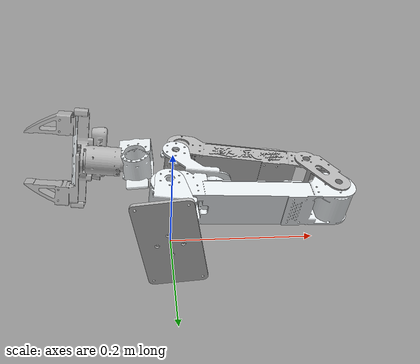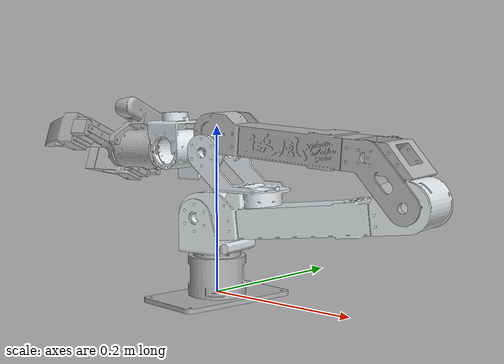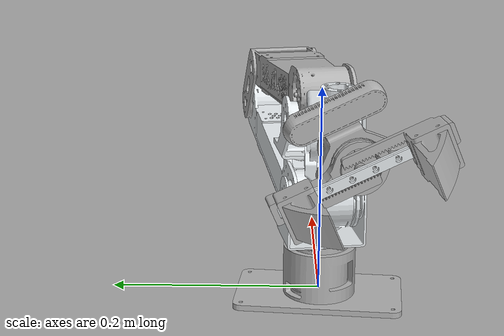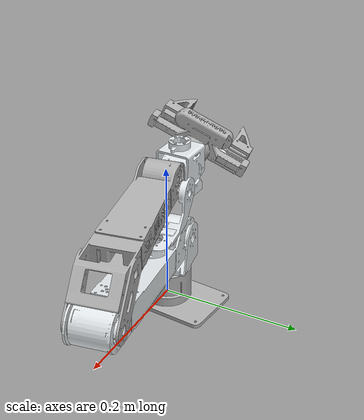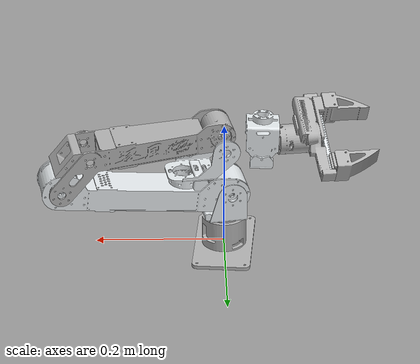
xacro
<?xml version="1.0" encoding="utf-8"?>
<robot name="sukinee_urdf" xmlns:xacro="http://www.ros.org/wiki/xacro">
  <xacro:arg name="use_mock_hardware" default="true"/>
  <xacro:arg name="hardware_plugin" default="mock_components/GenericSystem"/>
  <xacro:arg name="arm_command_interface" default="position"/>
  <xacro:arg name="gripper_command_interface" default="position"/>
  <xacro:arg name="include_gz_plugin" default="false"/>
  <xacro:arg name="controllers_file" default=""/>
  <xacro:arg name="world_z" default="0.0"/>
  <xacro:arg name="use_gazebo_gripper_controller" default="false"/>

  <xacro:include filename="$(find sukinee_urdf)/urdf/sukinee_ros2_control.xacro"/>

  <link name="world" />
  <joint name="world_to_base_link" type="fixed">
    <parent link="world" />
    <child link="base_link" />
    <origin xyz="0 0 $(arg world_z)" rpy="0 0 0" />
  </joint>
  <link name="base_link">
    <inertial>
      <origin xyz="1.5245E-07 1.2552E-07 0.013027" rpy="0 0 0" />
      <mass value="0.54275" />
      <inertia ixx="0.00058688" ixy="-2.8116E-05" ixz="1.5174E-09" iyy="0.00028904" iyz="1.2494E-09" izz="0.00073167" />
    </inertial>
    <visual>
      <origin xyz="0 0 0" rpy="0 0 0" />
      <geometry>
        <mesh filename="package://sukinee_urdf/meshes/urdf_camera_gripper/base_link.STL" />
      </geometry>
      <material name="">
        <color rgba="0.69804 0.69804 0.69804 1" />
      </material>
    </visual>
    <collision>
      <origin xyz="0 0 0" rpy="0 0 0" />
      <geometry>
        <mesh filename="package://sukinee_urdf/meshes/urdf_camera_gripper/base_link.STL" />
      </geometry>
    </collision>
  </link>
  <link name="Link1">
    <inertial>
      <origin xyz="-0.0053771 -0.0011385 0.038552" rpy="0 0 0" />
      <mass value="0.37961" />
      <inertia ixx="0.00019575" ixy="6.0614E-06" ixz="2.553E-06" iyy="0.00016059" iyz="4.2618E-07" izz="0.00019169" />
    </inertial>
    <visual>
      <origin xyz="0 0 0" rpy="0 0 0" />
      <geometry>
        <mesh filename="package://sukinee_urdf/meshes/urdf_camera_gripper/Link1.STL" />
      </geometry>
      <material name="">
        <color rgba="0.89804 0.91765 0.92941 1" />
      </material>
    </visual>
    <collision>
      <origin xyz="0 0 0" rpy="0 0 0" />
      <geometry>
        <mesh filename="package://sukinee_urdf/meshes/urdf_camera_gripper/Link1.STL" />
      </geometry>
    </collision>
  </link>
  <joint name="Joint1" type="continuous">
    <origin xyz="0 0 0.0514" rpy="0 0 0" />
    <parent link="base_link" />
    <child link="Link1" />
    <axis xyz="0 0 -1" />
    <limit effort="5" velocity="5" />
  </joint>
  <link name="Link2">
    <inertial>
      <origin xyz="0.19861 -0.019415 -0.027112" rpy="0 0 0" />
      <mass value="0.63265" />
      <inertia ixx="0.00023073" ixy="0.00021283" ixz="-2.0428E-06" iyy="0.0020677" iyz="-3.5072E-07" izz="0.0021179" />
    </inertial>
    <visual>
      <origin xyz="0 0 0" rpy="0 0 0" />
      <geometry>
        <mesh filename="package://sukinee_urdf/meshes/urdf_camera_gripper/Link2.STL" />
      </geometry>
      <material name="">
        <color rgba="0.89804 0.91765 0.92941 1" />
      </material>
    </visual>
    <collision>
      <origin xyz="0 0 0" rpy="0 0 0" />
      <geometry>
        <mesh filename="package://sukinee_urdf/meshes/urdf_camera_gripper/Link2.STL" />
      </geometry>
    </collision>
  </link>
  <joint name="Joint2" type="revolute">
    <origin xyz="-0.010939 0.025949 0.0425" rpy="-1.5708 -0.00097565 0.16603" />
    <parent link="Link1" />
    <child link="Link2" />
    <axis xyz="0 0 -1" />
    <limit lower="-0.3" upper="2.6" effort="5" velocity="5" />
  </joint>
  <link name="Link3">
    <inertial>
      <origin xyz="-0.16918 -0.04234 -0.027922" rpy="0 0 0" />
      <mass value="0.50027" />
      <inertia ixx="0.00012507" ixy="-9.8555E-06" ixz="-6.0131E-07" iyy="0.0010627" iyz="-6.7669E-07" izz="0.0011221" />
    </inertial>
    <visual>
      <origin xyz="0 0 0" rpy="0 0 0" />
      <geometry>
        <mesh filename="package://sukinee_urdf/meshes/urdf_camera_gripper/Link3.STL" />
      </geometry>
      <material name="">
        <color rgba="0.69804 0.69804 0.69804 1" />
      </material>
    </visual>
    <collision>
      <origin xyz="0 0 0" rpy="0 0 0" />
      <geometry>
        <mesh filename="package://sukinee_urdf/meshes/urdf_camera_gripper/Link3.STL" />
      </geometry>
    </collision>
  </link>
  <joint name="Joint3" type="revolute">
    <origin xyz="0.26466 -0.031009 0" rpy="0 0 0" />
    <parent link="Link2" />
    <child link="Link3" />
    <axis xyz="0 0 -1" />
    <limit lower="-2.36" upper="0.3" effort="5" velocity="5" />
  </joint>
  <link name="Link4">
    <inertial>
      <origin xyz="-0.052455 -0.054524 -0.025682" rpy="0 0 0" />
      <mass value="0.27416" />
      <inertia ixx="0.00012695" ixy="-2.6532E-05" ixz="2.2452E-07" iyy="0.00018079" iyz="1.7982E-08" izz="0.00012597" />
    </inertial>
    <visual>
      <origin xyz="0 0 0" rpy="0 0 0" />
      <geometry>
        <mesh filename="package://sukinee_urdf/meshes/urdf_camera_gripper/Link4.STL" />
      </geometry>
      <material name="">
        <color rgba="0.89804 0.91765 0.92941 1" />
      </material>
    </visual>
    <collision>
      <origin xyz="0 0 0" rpy="0 0 0" />
      <geometry>
        <mesh filename="package://sukinee_urdf/meshes/urdf_camera_gripper/Link4.STL" />
      </geometry>
    </collision>
  </link>
  <joint name="Joint4" type="revolute">
    <origin xyz="-0.25553 -0.046044 -0.0039" rpy="0 0 0" />
    <parent link="Link3" />
    <child link="Link4" />
    <axis xyz="0 0 -1" />
    <limit lower="-0.8" upper="0.8" effort="1.6" velocity="5" />
  </joint>
  <link name="Link5">
    <inertial>
      <origin xyz="-0.00069753 -0.0032664 0.040879" rpy="0 0 0" />
      <mass value="0.23438" />
      <inertia ixx="6.5833E-05" ixy="4.682E-06" ixz="2.603E-07" iyy="8.781E-05" iyz="1.4416E-06" izz="7.0008E-05" />
    </inertial>
    <visual>
      <origin xyz="0 0 0" rpy="0 0 0" />
      <geometry>
        <mesh filename="package://sukinee_urdf/meshes/urdf_camera_gripper/Link5.STL" />
      </geometry>
      <material name="">
        <color rgba="0.89804 0.91765 0.92941 1" />
      </material>
    </visual>
    <collision>
      <origin xyz="0 0 0" rpy="0 0 0" />
      <geometry>
        <mesh filename="package://sukinee_urdf/meshes/urdf_camera_gripper/Link5.STL" />
      </geometry>
    </collision>
  </link>
  <joint name="Joint5" type="revolute">
    <origin xyz="-0.063304 -0.043146 -0.0245" rpy="1.5708 1.3765 3.112" />
    <parent link="Link4" />
    <child link="Link5" />
    <axis xyz="0 0 -1" />
    <limit lower="-0.8" upper="0.8" effort="1.6" velocity="5" />
  </joint>
  <link name="Link6">
    <inertial>
      <origin xyz="0.0024889 -0.0057192 0.037515" rpy="0 0 0" />
      <mass value="0.25842" />
      <inertia ixx="6.3275E-05" ixy="-2.4218E-05" ixz="-5.9557E-07" iyy="0.00010755" iyz="-4.046E-07" izz="0.00014859" />
    </inertial>
    <visual>
      <origin xyz="0 0 0" rpy="0 0 0" />
      <geometry>
        <mesh filename="package://sukinee_urdf/meshes/urdf_camera_gripper/Link6.STL" />
      </geometry>
      <material name="">
        <color rgba="0.69804 0.69804 0.69804 1" />
      </material>
    </visual>
    <collision>
      <origin xyz="0 0 0" rpy="0 0 0" />
      <geometry>
        <mesh filename="package://sukinee_urdf/meshes/urdf_camera_gripper/Link6.STL" />
      </geometry>
    </collision>
  </link>
  <joint name="Joint6" type="revolute">
    <origin xyz="0.003658 0.019663 0.045" rpy="1.5708 0.0055167 2.9577" />
    <parent link="Link5" />
    <child link="Link6" />
    <axis xyz="0 0 -1" />
    <limit lower="-2.1" upper="2.1" effort="1.6" velocity="5" />
  </joint>
  <link name="Link8">
    <inertial>
      <origin xyz="-1.3531E-16 -8.0214E-15 0.0030448" rpy="0 0 0" />
      <mass value="0.019614" />
      <inertia ixx="6.0759E-06" ixy="-1.3306E-05" ixz="7.577E-22" iyy="3.0348E-05" iyz="2.1085E-22" izz="3.6283E-05" />
    </inertial>
    <visual>
      <origin xyz="0 0 0" rpy="0 0 0" />
      <geometry>
        <mesh filename="package://sukinee_urdf/meshes/urdf_camera_gripper/Link8.STL" />
      </geometry>
      <material name="">
        <color rgba="0.89804 0.91765 0.92941 1" />
      </material>
    </visual>
    <collision>
      <origin xyz="0 0 0" rpy="0 0 0" />
      <geometry>
        <mesh filename="package://sukinee_urdf/meshes/urdf_camera_gripper/Link8.STL" />
      </geometry>
    </collision>
  </link>
  <joint name="Joint8" type="fixed">
    <origin xyz="1.7459E-05 0.00014898 0.075" rpy="0 0 0" />
    <parent link="Link6" />
    <child link="Link8" />
    <axis xyz="0 0 0" />
  </joint>
  <link name="Link7">
    <inertial>
      <origin xyz="1.993E-11 1.6042E-11 0.0062973" rpy="0 0 0" />
      <mass value="0.0027847" />
      <inertia ixx="1.8957E-07" ixy="-2.0185E-16" ixz="4.8123E-17" iyy="1.8957E-07" iyz="-5.3402E-17" izz="3.3854E-07" />
    </inertial>
    <visual>
      <origin xyz="0 0 0" rpy="0 0 0" />
      <geometry>
        <mesh filename="package://sukinee_urdf/meshes/urdf_camera_gripper/Link7.STL" />
      </geometry>
      <material name="">
        <color rgba="0.69804 0.69804 0.69804 1" />
      </material>
    </visual>
    <collision>
      <origin xyz="0 0 0" rpy="0 0 0" />
      <geometry>
        <mesh filename="package://sukinee_urdf/meshes/urdf_camera_gripper/Link7.STL" />
      </geometry>
    </collision>
  </link>
  <joint name="Joint7" type="revolute">
    <origin xyz="1.7459E-05 0.00014898 0.058" rpy="0 0 0" />
    <parent link="Link6" />
    <child link="Link7" />
    <axis xyz="0 0 -1" />
    <limit lower="0" upper="1.57" effort="1.6" velocity="5" />
  </joint>
  <link name="Link_r">
    <inertial>
      <origin xyz="0.0089236 0.0037835 -0.0070751" rpy="0 0 0" />
      <mass value="0.034938" />
      <inertia ixx="8.4376E-06" ixy="1.4671E-08" ixz="-6.1418E-07" iyy="9.0041E-06" iyz="-2.1554E-08" izz="5.2223E-06" />
    </inertial>
    <visual>
      <origin xyz="0 0 0" rpy="0 0 0" />
      <geometry>
        <mesh filename="package://sukinee_urdf/meshes/urdf_camera_gripper/Link_r.STL" />
      </geometry>
      <material name="">
        <color rgba="0.69804 0.69804 0.69804 1" />
      </material>
    </visual>
    <collision>
      <origin xyz="0 0 0" rpy="0 0 0" />
      <geometry>
        <mesh filename="package://sukinee_urdf/meshes/urdf_camera_gripper/Link_r.STL" />
      </geometry>
    </collision>
  </link>
  <joint name="right_finger" type="prismatic">
    <origin xyz="0.037984 0.016907 0.083123" rpy="1.5708 -1.5384 -1.1551" />
    <parent link="Link6" />
    <child link="Link_r" />
    <axis xyz="0 0 1" />
    <limit lower="0" upper="0.04" effort="1" velocity="0.02" />
    <mimic joint="Joint7" multiplier="0.025" offset="0" />
  </joint>
  <link name="Link_l">
    <inertial>
      <origin xyz="-0.0091526 -0.0032817 -0.0070751" rpy="0 0 0" />
      <mass value="0.034938" />
      <inertia ixx="8.4419E-06" ixy="5.116E-08" ixz="6.1429E-07" iyy="8.9999E-06" iyz="-1.8265E-08" izz="5.2223E-06" />
    </inertial>
    <visual>
      <origin xyz="0 0 0" rpy="0 0 0" />
      <geometry>
        <mesh filename="package://sukinee_urdf/meshes/urdf_camera_gripper/Link_l.STL" />
      </geometry>
      <material name="">
        <color rgba="0.69804 0.69804 0.69804 1" />
      </material>
    </visual>
    <collision>
      <origin xyz="0 0 0" rpy="0 0 0" />
      <geometry>
        <mesh filename="package://sukinee_urdf/meshes/urdf_camera_gripper/Link_l.STL" />
      </geometry>
    </collision>
  </link>
  <joint name="left_finger" type="prismatic">
    <origin xyz="-0.037949 -0.016609 0.083123" rpy="1.5708 1.5384 1.9865" />
    <parent link="Link6" />
    <child link="Link_l" />
    <axis xyz="0 0 1" />
    <limit lower="0" upper="0.04" effort="1" velocity="0.02" />
    <mimic joint="Joint7" multiplier="0.025" offset="0" />
  </joint>
  <link name="tool0" />
  <joint name="tool0_fixed_joint" type="fixed">
    <origin xyz="-0.000737 -0.000386 0.040000" rpy="0 0 0" />
    <parent link="Link8" />
    <child link="tool0" />
  </joint>

  <xacro:sukinee_ros2_control
    use_mock_hardware="$(arg use_mock_hardware)"
    hardware_plugin="$(arg hardware_plugin)"
    arm_command_interface="$(arg arm_command_interface)"
    gripper_command_interface="$(arg gripper_command_interface)"
    use_gazebo_gripper_controller="$(arg use_gazebo_gripper_controller)"/>

  <xacro:if value="$(arg include_gz_plugin)">
    <gazebo>
      <plugin filename="gz_ros2_control-system" name="gz_ros2_control::GazeboSimROS2ControlPlugin">
        <parameters>$(arg controllers_file)</parameters>
      </plugin>
    </gazebo>
  </xacro:if>
</robot>
